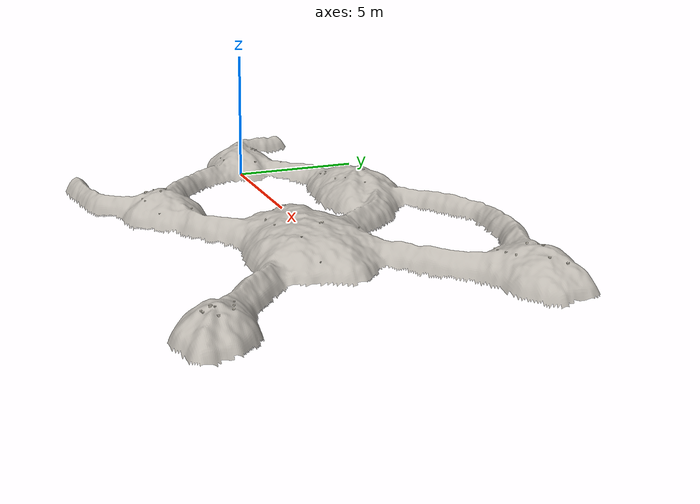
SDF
<?xml version="1.0"?>
<sdf version="1.9">
  <model name="cave_roof">
    <static>true</static>
    <link name="roof">
      <visual name="ceiling">
        <geometry><mesh><uri>model://cave_roof/meshes/ceiling.obj</uri></mesh></geometry>
        <material>
          <diffuse>0.75 0.73 0.7 1</diffuse>
          <specular>0.08 0.08 0.08 1</specular>
          <pbr><metal>
            <albedo_map>model://cave_rock/materials/textures/rock_albedo.png</albedo_map>
            <normal_map>model://cave_rock/materials/textures/rock_normal.png</normal_map>
            <roughness>0.7</roughness>
            <metalness>0.0</metalness>
          </metal></pbr>
        </material>
      </visual>
      <visual name="stalactites">
        <geometry><mesh><uri>model://cave_roof/meshes/stalactites.obj</uri></mesh></geometry>
        <material>
          <diffuse>0.95 0.92 0.85 1</diffuse>
          <specular>0.08 0.08 0.08 1</specular>
          <pbr><metal>
            <albedo_map>model://cave_rock/materials/textures/rock_albedo.png</albedo_map>
            <normal_map>model://cave_rock/materials/textures/rock_normal.png</normal_map>
            <roughness>0.4</roughness>
            <metalness>0.0</metalness>
          </metal></pbr>
        </material>
      </visual>
    </link>
  </model>
</sdf>
